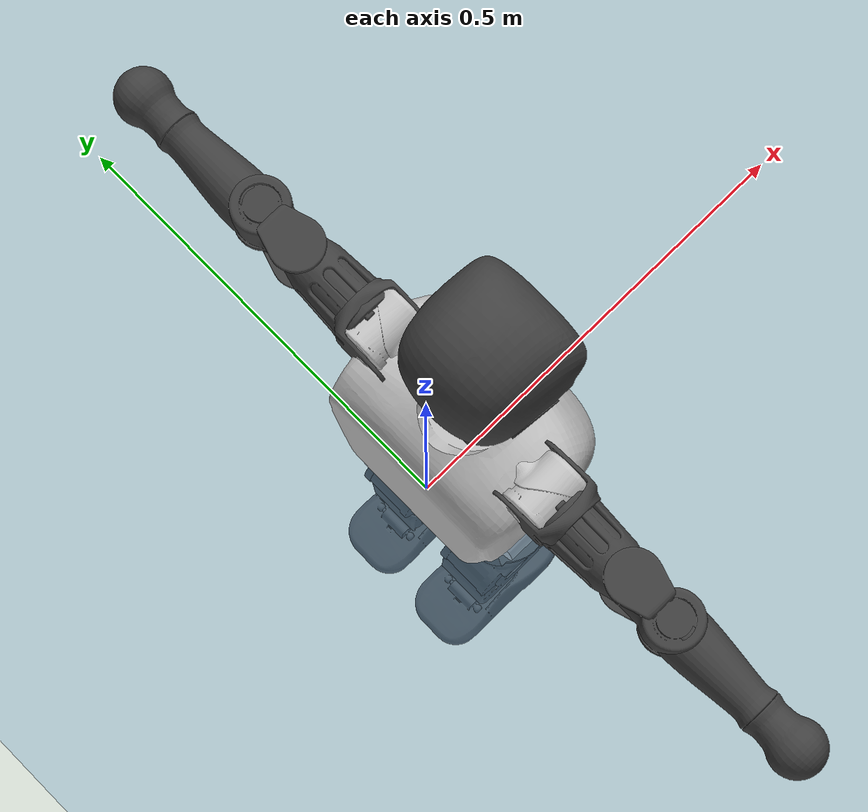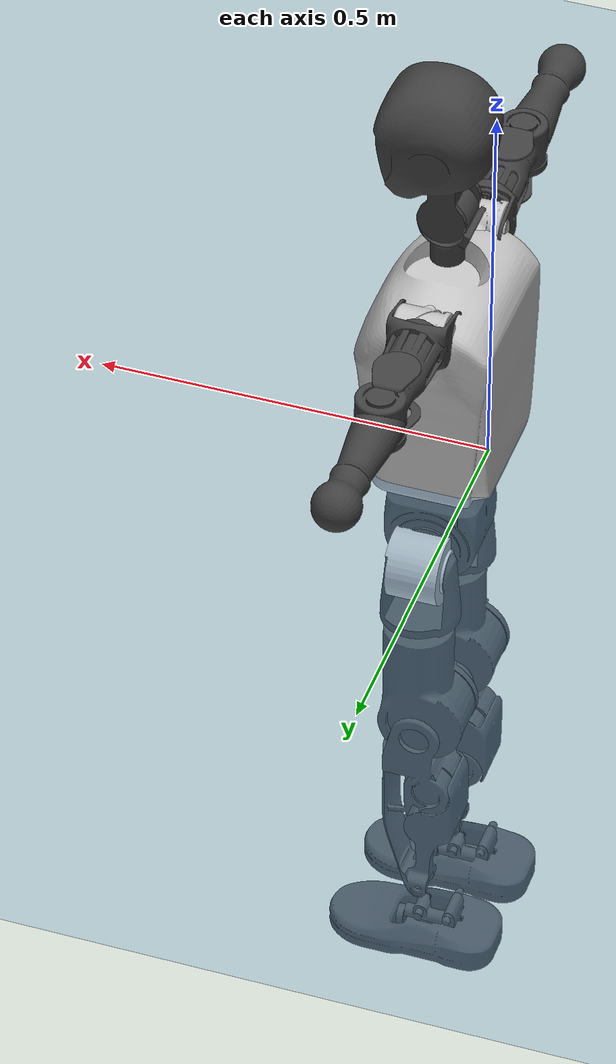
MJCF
<mujoco model="T1">
  <compiler angle="radian" assetdir="assets" balanceinertia="true" inertiafromgeom="false"/>

  <option timestep="0.005" density="1.2" viscosity="2e-05"/>

  <size nkey="1"/>

  <visual>
    <quality shadowsize="8192"/>
    <map shadowclip="0.5"/>
  </visual>

  <default>
    <default class="/">
      <joint armature="0.01" damping="0.01" frictionloss="0.1"/>
      <geom contype="0" conaffinity="0" group="1" solref="-1000 -80"/>
      <site size="0.01 0.005 0.005" group="5"/>
      <general forcelimited="true" biastype="affine" gainprm="25" biasprm="0 -25 -0.6"/>
      <default class="t1">
        <geom rgba="0.25 0.25 0.25 1"/>
        <default class="visual">
          <geom type="mesh" group="2"/>
        </default>
        <default class="collision">
          <geom group="3"/>
        </default>
        <default class="foot">
          <geom size="0.1115 0.05 0.015" type="box" condim="6" group="4" priority="1" solimp="0.015 1 0.015"/>
        </default>
        <default class="reward_collision_sphere">
          <geom group="5" rgba="1 0 0 1"/>
        </default>
      </default>
    </default>
  </default>

  <asset>
    <texture type="skybox" colorspace="auto" name="//unnamed_texture_0" builtin="gradient" rgb1="0.95 0.95 0.95" rgb2="0.95 0.95 0.95" width="100" height="600"/>
    <texture type="2d" colorspace="auto" name="texplane" builtin="checker" rgb1="0.345 0.575 0.748" rgb2="0.345 0.575 0.748" markrgb="1 1 1" width="512" height="512"/>
    <material name="MatPlane" class="/" texture="texplane" texuniform="true" texrepeat="2 2" specular="0.9"/>
    <mesh name="Trunk" class="/" file="Trunk.stl"/>
    <mesh name="H1" class="/" file="H1.stl"/>
    <mesh name="H2" class="/" file="H2.stl"/>
    <mesh name="AL1" class="/" file="AL1.stl"/>
    <mesh name="AL2" class="/" file="AL2.stl"/>
    <mesh name="AL3" class="/" file="AL3.stl"/>
    <mesh name="left_hand_link" class="/" file="left_hand_link.stl"/>
    <mesh name="AR1" class="/" file="AR1.stl"/>
    <mesh name="AR2" class="/" file="AR2.stl"/>
    <mesh name="AR3" class="/" file="AR3.stl"/>
    <mesh name="right_hand_link" class="/" file="right_hand_link.stl"/>
    <mesh name="Waist" class="/" file="Waist.stl"/>
    <mesh name="Hip_Pitch_Left" class="/" file="Hip_Pitch_Left.stl"/>
    <mesh name="Hip_Roll_Left" class="/" file="Hip_Roll_Left.stl"/>
    <mesh name="Hip_Yaw_Left" class="/" file="Hip_Yaw_Left.stl"/>
    <mesh name="Shank_Left" class="/" file="Shank_Left.stl"/>
    <mesh name="Ankle_Cross_Left" class="/" file="Ankle_Cross_Left.stl"/>
    <mesh name="left_foot_link" class="/" file="left_foot_link.stl"/>
    <mesh name="Hip_Pitch_Right" class="/" file="Hip_Pitch_Right.stl"/>
    <mesh name="Hip_Roll_Right" class="/" file="Hip_Roll_Right.stl"/>
    <mesh name="Hip_Yaw_Right" class="/" file="Hip_Yaw_Right.stl"/>
    <mesh name="Shank_Right" class="/" file="Shank_Right.stl"/>
    <mesh name="Ankle_Cross_Right" class="/" file="Ankle_Cross_Right.stl"/>
    <mesh name="right_foot_link" class="/" file="right_foot_link.stl"/>
  </asset>

  <worldbody>
    <geom name="floor" class="/" size="100 100 0.125" type="plane" group="0" material="MatPlane"/>
    <light name="toplight_shadow" class="/" pos="0 0 5" dir="0.0990148 0.0990148 -0.990148" type="directional" ambient="0.04 0.04 0.04" diffuse="0.55 0.55 0.55" specular="0.12 0.12 0.12"/>
    <light name="toplight_fill" class="/" pos="0 0 5" dir="0.0990148 0.0990148 -0.990148" type="directional" castshadow="false" ambient="0.04 0.04 0.04" diffuse="0.3 0.3 0.3" specular="0.08 0.08 0.08"/>
    <body name="trunk" childclass="t1" pos="0.000226899 0.00114138 0.00187734" quat="1 -0.000137937 6.72949e-05 0.000143426">
      <inertial pos="0.0502009 -0.00309336 0.12225" quat="0.999943 -0.00753111 -0.00146075 -0.00746666" mass="8.45602" diaginertia="0.0613713 0.00679797 0.115307"/>
      <joint name="//unnamed_joint_0" type="free" armature="0" damping="0" frictionloss="0"/>
      <geom name="//unnamed_geom_1" class="visual" rgba="0.76 0.76 0.76 1" mesh="Trunk"/>
      <geom name="//unnamed_geom_2" class="collision" size="0.0678913 0.0905218 0.135783" pos="0.0554309 0 0.140086" type="box"/>
      <geom name="//unnamed_geom_3" class="reward_collision_sphere" size="0.1041" pos="0.0554309 0 0.116738"/>
      <geom name="//unnamed_geom_4" class="reward_collision_sphere" size="0.0135783" pos="0.0554309 0.0530761 0"/>
      <geom name="//unnamed_geom_5" class="reward_collision_sphere" size="0.0135783" pos="0.0554309 -0.0530761 0"/>
      <geom name="//unnamed_geom_6" class="reward_collision_sphere" size="0.0135783" pos="0.0554309 0.0668134 0.210129"/>
      <geom name="//unnamed_geom_7" class="reward_collision_sphere" size="0.0135783" pos="0.0554309 -0.0668134 0.210129"/>
      <site name="imu" pos="0.000531413 0.00488136 -0.0135812" size="0.00905218"/>
      <camera name="track" pos="0 -1.24885 0" quat="0.707107 0.707107 0 0" mode="trackcom"/>
      <camera name="ego_camera" pos="0.112709 0 0.4903" quat="-0.5 -0.5 0.5 0.5"/>
      <body name="H1" pos="0.0570479 -0.0031612 0.281279" quat="1 0.000292648 0.000138405 -0.000462845">
        <inertial pos="0.000215979 -0.0021675 0.069691" quat="0.756115 -0.0140067 0.000711069 0.654289" mass="0.318269" diaginertia="0.000152917 2.13916e-05 0.000307905"/>
        <joint name="AAHead_yaw" pos="0 0 0" axis="0.00875964 -0.0097623 0.999914" stiffness="0.00330299" range="-1.51539 1.56481" armature="0.00942509" damping="0" frictionloss="0.0791063"/>
        <geom name="//unnamed_geom_8" class="visual" mesh="H1"/>
        <body name="H2" pos="-0.000245454 -0.00111148 0.0735628" quat="1 -0.00016262 -6.15643e-07 0.000497249">
          <inertial pos="0.00385837 0.00272432 0.116984" quat="0.990181 0.100053 -0.0693333 -0.0687244" mass="0.468748" diaginertia="0.00136536 0.00017772 0.00381872"/>
          <joint name="Head_pitch" pos="0 0 0" axis="-0.00929315 -0.999954 -0.00230738" range="-1.19062 0.332608" armature="0.00848893" damping="0.0137307" frictionloss="0.0861263"/>
          <geom name="//unnamed_geom_9" class="visual" mesh="H2"/>
          <geom name="//unnamed_geom_10" class="collision" size="0.0724174" pos="0.00923848 0 0.128412"/>
          <geom name="//unnamed_geom_11" class="reward_collision_sphere" size="0.0814696" pos="0.018477 0 0.116738"/>
        </body>
      </body>
      <body name="AL1" pos="0.0516927 0.0642594 0.253558" quat="1 0.000236743 0.000132717 -0.000369054">
        <inertial pos="0.00153315 0.025314 0.000218275" quat="0.505765 0.497155 -0.502565 0.494435" mass="0.380147" diaginertia="0.000865352 0.000119452 0.000625588"/>
        <joint name="Left_Shoulder_Pitch" pos="0 0 0" axis="0.0112371 0.999896 0.00900594" range="-3.30532 1.22185" armature="0.00790858" damping="0" frictionloss="0.0778416"/>
        <geom name="//unnamed_geom_12" class="visual" rgba="0.76 0.76 0.76 1" mesh="AL1"/>
        <body name="AL2" pos="-0.0013592 0.027403 0.00103761" quat="1 8.09469e-05 0.000139444 0.00021581">
          <inertial pos="0.00295453 0.0264255 -0.000378502" quat="0.485961 0.518057 -0.494043 0.501378" mass="0.119017" diaginertia="0.00027017 3.26674e-05 0.0003838"/>
          <joint name="Left_Shoulder_Roll" pos="0 0 0" axis="-0.999985 0.00457324 0.0030932" range="-1.5715 1.71108" armature="0.0101089" damping="0.0167147" frictionloss="0.0898463"/>
          <geom name="//unnamed_geom_13" class="visual" mesh="AL2"/>
          <body name="AL3" pos="-0.00207523 0.0350058 -0.00100547" quat="1 -0.000319369 -0.000253387 0.000158306">
            <inertial pos="7.58903e-05 0.0543875 0.00245013" quat="0.708483 0.705721 0.0031326 0.000434374" mass="0.748938" diaginertia="0.00834332 0.00118572 0.00131961"/>
            <joint name="Left_Elbow_Pitch" pos="0 0 0" axis="-0.00962626 -0.999935 -0.00614693" stiffness="0.0124172" range="-2.25487 2.26086" armature="0.00964446" damping="0.0107666" frictionloss="0.08855"/>
            <geom name="//unnamed_geom_14" class="visual" mesh="AL3"/>
            <geom name="//unnamed_geom_15" class="collision" size="0.0271565 0.0678913" pos="0 0.0312212 0" quat="0.707105 0.707108 0 0" type="cylinder"/>
            <geom name="//unnamed_geom_16" class="reward_collision_sphere" size="0.0325878"/>
            <body name="left_hand_link" pos="-0.00231546 0.0945242 -0.000247227" quat="1 -9.48344e-05 2.60915e-05 -8.19115e-05">
              <inertial pos="-0.000994723 0.0704994 -0.000504911" quat="0.712781 0.701367 0.00156211 -0.00504979" mass="0.23508" diaginertia="0.00551144 0.000791577 0.000461249"/>
              <joint name="Left_Elbow_Yaw" pos="0 0 0" axis="-0.00393126 -0.00539312 0.999978" stiffness="0.012531" range="-2.49662 -0.00711521" armature="0.00842278" damping="0.00547878" frictionloss="0.10303"/>
              <geom name="//unnamed_geom_17" class="visual" mesh="left_hand_link"/>
              <geom name="//unnamed_geom_18" class="collision" size="0.0271565 0.0792066" pos="0 0.0811752 0" quat="0.707105 0.707108 0 0" type="cylinder"/>
              <geom name="//unnamed_geom_19" class="reward_collision_sphere" size="0.0452609"/>
              <geom name="//unnamed_geom_20" class="reward_collision_sphere" size="0.0316826" pos="0 0.0686867 0"/>
              <geom name="//unnamed_geom_21" class="reward_collision_sphere" size="0.0316826" pos="0 0.134251 0"/>
            </body>
          </body>
        </body>
      </body>
      <body name="AR1" pos="0.0509465 -0.0644654 0.254833" quat="1 -0.00010476 0.000449873 0.00010725">
        <inertial pos="-0.000718507 -0.0292771 -0.00128074" quat="0.497597 0.501996 -0.500482 0.499915" mass="0.407121" diaginertia="0.000932713 0.000118679 0.000643467"/>
        <joint name="Right_Shoulder_Pitch" pos="0 0 0" axis="0.00299455 -0.999995 0.00107319" range="-1.22268 3.31603" armature="0.00851466" damping="0.020215" frictionloss="0.0904706"/>
        <geom name="//unnamed_geom_22" class="visual" rgba="0.76 0.76 0.76 1" mesh="AR1"/>
        <body name="AR2" pos="-0.000865268 -0.0300607 0.00155534" quat="1 3.43547e-06 -6.03229e-07 3.61566e-06">
          <inertial pos="0.00551793 -0.0235353 0.000724797" quat="0.521243 0.485424 -0.504422 0.488085" mass="0.119501" diaginertia="0.000271329 3.17752e-05 0.000388257"/>
          <joint name="Right_Shoulder_Roll" pos="0 0 0" axis="-0.999983 0.00578658 0.000854394" range="-1.7513 1.61135" armature="0.00865054" damping="0" frictionloss="0.0973364"/>
          <geom name="//unnamed_geom_23" class="visual" mesh="AR2"/>
          <body name="AR3" pos="-0.00117347 -0.0366128 -0.00318379" quat="0.999999 0.00125323 -0.000447227 9.5485e-05">
            <inertial pos="-0.000360124 -0.0515871 -0.00122344" quat="0.712385 0.701683 0.00198302 0.012076" mass="0.759624" diaginertia="0.00851578 0.0011865 0.00132199"/>
            <joint name="Right_Elbow_Pitch" pos="0 0 0" axis="0.00259081 0.999996 0.000936238" stiffness="0.00994995" range="-2.30642 2.24519" armature="0.00925601" damping="0" frictionloss="0.0892371"/>
            <geom name="//unnamed_geom_24" class="visual" mesh="AR3"/>
            <geom name="//unnamed_geom_25" class="collision" size="0.0271565 0.0678913" pos="0 -0.0312212 0" quat="0.707105 0.707108 0 0" type="cylinder"/>
            <geom name="//unnamed_geom_26" class="reward_collision_sphere" size="0.0325878"/>
            <body name="right_hand_link" pos="0.000549525 -0.0933038 -0.000949201" quat="1 0.000190892 6.74068e-05 -0.00013734">
              <inertial pos="-0.00126116 -0.0691554 0.00107732" quat="0.706889 0.707219 -0.00632617 0.0104428" mass="0.236563" diaginertia="0.0053395 0.000742089 0.000446695"/>
              <joint name="Right_Elbow_Yaw" pos="0 0 0" axis="0.00378192 0.0111814 0.99993" range="0.0522931 2.45958" armature="0.00872979" damping="0.00380297" frictionloss="0.0920752"/>
              <geom name="//unnamed_geom_27" class="visual" mesh="right_hand_link"/>
              <geom name="//unnamed_geom_28" class="collision" size="0.0271565 0.0792066" pos="0 -0.0811752 0" quat="0.707105 0.707108 0 0" type="cylinder"/>
              <geom name="//unnamed_geom_29" class="reward_collision_sphere" size="0.0452609"/>
              <geom name="//unnamed_geom_30" class="reward_collision_sphere" size="0.0316826" pos="0 -0.0686867 0"/>
              <geom name="//unnamed_geom_31" class="reward_collision_sphere" size="0.0316826" pos="0 -0.134251 0"/>
            </body>
          </body>
        </body>
      </body>
      <body name="Waist" pos="0.0594138 -0.000581857 -0.133019" quat="0.999999 -0.000708303 1.52075e-05 -0.000936376">
        <inertial pos="0.00218432 -0.0023725 0.00944372" quat="0.98355 -0.000315215 -0.180619 0.00226329" mass="1.98679" diaginertia="0.00365395 0.000510672 0.0100822"/>
        <joint name="Waist" pos="0 0 0" axis="0.0105457 0.00838902 0.999909" stiffness="0.00403758" range="-1.54977 1.58319" armature="0.010158" damping="0" frictionloss="0.0898563"/>
        <geom name="//unnamed_geom_32" class="visual" mesh="Waist"/>
        <body name="Hip_Pitch_Left" pos="0.00423288 0.0661204 0.001237" quat="1 -0.000136101 -0.000562189 -0.000678678">
          <inertial pos="-4.74268e-05 -0.00727592 -0.0219097" quat="0.972733 0.230884 0.0214211 -0.00499336" mass="0.756283" diaginertia="0.00115125 0.000133006 0.00253057"/>
          <joint name="Left_Hip_Pitch" pos="0 0 0" axis="0.0148519 0.99989 -0.000483346" stiffness="0.00386105" range="-1.81354 1.61767" armature="0.00803751" damping="0.00921066" frictionloss="0.102691"/>
          <geom name="//unnamed_geom_33" class="visual" rgba="0.76 0.76 0.76 1" mesh="Hip_Pitch_Left"/>
          <body name="Hip_Roll_Left" pos="0.000593877 0.000856635 -0.0210947" quat="1 8.24392e-05 0.000498403 -0.000127693">
            <inertial pos="0.000525349 -0.00176937 -0.0607732" quat="0.709015 -0.00769663 -0.00694923 0.705117" mass="0.286906" diaginertia="0.0011714 0.000147388 0.00109855"/>
            <joint name="Left_Hip_Roll" pos="0 0 0" axis="-0.999987 0.00267715 -0.00443992" range="-1.60836 0.210902" armature="0.00933701" damping="0.0171862" frictionloss="0.092787"/>
            <geom name="//unnamed_geom_34" class="visual" mesh="Hip_Roll_Left"/>
            <geom name="//unnamed_geom_35" class="reward_collision_sphere" size="0.049787"/>
            <body name="Hip_Yaw_Left" pos="-0.00147658 0.00129943 -0.0948912" quat="1 0.000101364 6.4037e-05 0.00013802">
              <inertial pos="-0.00517026 -0.00170229 -0.107003" quat="0.697344 -0.033294 -0.035608 0.715077" mass="1.58686" diaginertia="0.016452 0.00235686 0.005621"/>
              <joint name="Left_Hip_Yaw" pos="0 0 0" axis="-0.00170454 -0.0125554 -0.99992" range="-0.97305 1.00466" armature="0.00921001" damping="0" frictionloss="0.103131"/>
              <geom name="//unnamed_geom_36" class="visual" mesh="Hip_Yaw_Left"/>
              <geom name="//unnamed_geom_37" class="collision" size="0.0452609 0.0724174" type="cylinder"/>
              <body name="Shank_Left" pos="-0.00887626 -9.87807e-05 -0.156702" quat="1 -6.541e-05 -7.9279e-05 0.00027692">
                <inertial pos="-0.00416345 -0.00096958 -0.14555" quat="0.997195 -0.00125232 -0.0226675 0.0713152" mass="1.2645" diaginertia="0.0231372 0.00324834 0.00418191"/>
                <joint name="Left_Knee_Pitch" pos="0 0 0" axis="-0.000546704 0.999999 -0.000842045" stiffness="0.00990782" range="0.0525188 2.39633" armature="0.00851935" damping="0.0179051" frictionloss="0.0904653"/>
                <geom name="//unnamed_geom_38" class="visual" mesh="Shank_Left"/>
                <geom name="//unnamed_geom_39" class="collision" size="0.0452609 0.0678913" pos="0 0 -0.140086" type="cylinder"/>
                <geom name="//unnamed_geom_40" class="reward_collision_sphere" size="0.0588392"/>
                <body name="Ankle_Cross_Left" pos="-0.00108115 0.00036299 -0.327246" quat="0.999999 -0.00105228 -0.000785751 0.000680348">
                  <inertial pos="-0.00127197 0.00213715 -0.0121054" quat="0.443906 0.554159 0.549099 0.440846" mass="0.0528873" diaginertia="1.95636e-05 2.27796e-06 2.37644e-05"/>
                  <joint name="Left_Ankle_Pitch" pos="0 0 0" axis="-0.0153793 0.999862 -0.00623868" stiffness="0.00924341" range="-0.918103 0.398527" armature="0.00877672" damping="0.0223481" frictionloss="0.0807964"/>
                  <geom name="//unnamed_geom_41" class="visual" mesh="Ankle_Cross_Left"/>
                  <body name="left_foot_link" pos="-0.00115105 0.00389747 -0.0166056" quat="1 -0.000411885 -2.61519e-05 -0.000394626">
                    <inertial pos="0.00226636 0.00161219 -0.00978144" quat="0.0112674 0.622545 0.00470414 0.782489" mass="0.51915" diaginertia="0.0018382 0.000240452 0.00504013"/>
                    <joint name="Left_Ankle_Roll" pos="0 0 0" axis="-0.999901 0.00115461 -0.0139963" stiffness="0.00900056" range="-0.492014 0.443199" armature="0.00877265" damping="0.0102953" frictionloss="0.102001"/>
                    <geom name="//unnamed_geom_42" class="visual" mesh="left_foot_link"/>
                    <geom name="left_foot" class="foot" size="0.099495 0.0520742 0.0127529" pos="0.00923848 0 -0.0175107"/>
                    <geom name="//unnamed_geom_44" class="reward_collision_sphere" size="0.0470713" pos="0.00923848 0 -0.0175107"/>
                    <geom name="//unnamed_geom_45" class="reward_collision_sphere" size="0.0271565" pos="0.0877655 -0.0143618 -0.0175107"/>
                    <geom name="//unnamed_geom_46" class="reward_collision_sphere" size="0.0271565" pos="-0.0646693 -0.0143618 -0.0175107"/>
                    <site name="left_foot" class="foot" pos="0.00923848 0 -0.0175107" size="0.00905218"/>
                  </body>
                </body>
              </body>
            </body>
          </body>
        </body>
        <body name="Hip_Pitch_Right" pos="0.00131894 -0.0633956 -0.00134404" quat="1 0.000339945 -0.000128625 0.000144731">
          <inertial pos="-0.000410942 0.005563 -0.0210519" quat="0.973669 -0.226365 0.0222209 -0.0153134" mass="0.705825" diaginertia="0.00118027 0.000133383 0.00260741"/>
          <joint name="Right_Hip_Pitch" pos="0 0 0" axis="0.00716899 -0.999892 -0.0128576" range="-1.53892 1.74393" armature="0.00838452" damping="0.0136995" frictionloss="0.0778997"/>
          <geom name="//unnamed_geom_47" class="visual" rgba="0.76 0.76 0.76 1" mesh="Hip_Pitch_Right"/>
          <body name="Hip_Roll_Right" pos="0.000247307 -0.00214684 -0.025487" quat="1 0.000299336 8.9338e-05 -0.000100042">
            <inertial pos="0.00074701 -0.000294691 -0.0646764" quat="0.704566 -0.0059234 -0.00619793 0.709586" mass="0.293588" diaginertia="0.00119552 0.000144423 0.0011289"/>
            <joint name="Right_Hip_Roll" pos="0 0 0" axis="-0.99992 -0.00160892 -0.0125278" range="-0.192271 1.56484" armature="0.00925895" damping="0.018272" frictionloss="0.0823621"/>
            <geom name="//unnamed_geom_48" class="visual" mesh="Hip_Roll_Right"/>
            <geom name="//unnamed_geom_49" class="reward_collision_sphere" size="0.049787"/>
            <body name="Hip_Yaw_Right" pos="0.00191111 0.00307752 -0.0946022" quat="1 -0.000309858 -0.000524797 0.000722894">
              <inertial pos="-0.00597693 0.000711542 -0.101432" quat="0.7181 -0.0346652 -0.0220491 0.694726" mass="1.68818" diaginertia="0.0175897 0.00243442 0.00556022"/>
              <joint name="Right_Hip_Yaw" pos="0 0 0" axis="-0.0133381 -0.00762308 -0.999882" stiffness="0.00221728" range="-1.05894 1.03264" armature="0.00843731" damping="0.0217968" frictionloss="0.0908973"/>
              <geom name="//unnamed_geom_50" class="visual" mesh="Hip_Yaw_Right"/>
              <geom name="//unnamed_geom_51" class="collision" size="0.0452609 0.0724174" type="cylinder"/>
              <body name="Shank_Right" pos="-0.0130976 0.00307926 -0.156748" quat="1 -0.000483903 8.03406e-05 -0.000185247">
                <inertial pos="-0.00493704 -0.0010796 -0.146123" quat="0.999217 0.00581685 -0.0220002 -0.032369" mass="1.31759" diaginertia="0.0236132 0.00314653 0.00417332"/>
                <joint name="Right_Knee_Pitch" pos="0 0 0" axis="0.00450059 -0.999972 -0.00601446" range="-2.28506 0.0506191" armature="0.00896002" damping="0.0182365" frictionloss="0.086131"/>
                <geom name="//unnamed_geom_52" class="visual" mesh="Shank_Right"/>
                <geom name="//unnamed_geom_53" class="collision" size="0.0452609 0.0678913" pos="0 0 -0.140086" type="cylinder"/>
                <geom name="//unnamed_geom_54" class="reward_collision_sphere" size="0.0588392"/>
                <body name="Ankle_Cross_Right" pos="-0.00237531 0.00111491 -0.325077" quat="1 0.00024955 -0.000651954 -0.000322574">
                  <inertial pos="-0.00528834 -0.000760333 -0.00950862" quat="0.443267 0.550842 0.550995 0.443274" mass="0.0541462" diaginertia="1.95153e-05 2.46141e-06 2.43693e-05"/>
                  <joint name="Right_Ankle_Pitch" pos="0 0 0" axis="-0.00488118 -0.999983 -0.00326046" range="-0.304964 0.920599" armature="0.00916222" damping="0" frictionloss="0.0832212"/>
                  <geom name="//unnamed_geom_55" class="visual" mesh="Ankle_Cross_Right"/>
                  <body name="right_foot_link" pos="0.000754587 -0.000947751 -0.0119078" quat="0.999999 -0.00115187 -0.000627776 -7.56151e-05">
                    <inertial pos="0.000934867 -0.00230587 -0.0101749" quat="-0.00799925 0.615421 0.00295494 0.788153" mass="0.511052" diaginertia="0.00176686 0.00022162 0.00450238"/>
                    <joint name="Right_Ankle_Roll" pos="0 0 0" axis="-0.999998 -0.00129438 -0.00116746" stiffness="0.0080051" range="-0.466281 0.427575" armature="0.0103182" damping="0.00443451" frictionloss="0.0860552"/>
                    <geom name="//unnamed_geom_56" class="visual" mesh="right_foot_link"/>
                    <geom name="right_foot" class="foot" size="0.101033 0.0466222 0.0141603" pos="0.00923848 0 -0.0175107"/>
                    <geom name="//unnamed_geom_58" class="reward_collision_sphere" size="0.0362087"/>
                    <geom name="//unnamed_geom_59" class="reward_collision_sphere" size="0.0271565" pos="0.00923848 0 -0.0175107"/>
                    <geom name="//unnamed_geom_60" class="reward_collision_sphere" size="0.0271565" pos="0.0877655 0.0143618 -0.0175107"/>
                    <geom name="//unnamed_geom_61" class="reward_collision_sphere" size="0.0271565" pos="-0.0646693 0.0143618 -0.0175107"/>
                    <site name="right_foot" class="foot" pos="0.00923848 0 -0.0175107" size="0.00905218"/>
                  </body>
                </body>
              </body>
            </body>
          </body>
        </body>
      </body>
    </body>
  </worldbody>

  <contact>
    <pair class="/" geom1="floor" geom2="left_foot" name="//unnamed_contact_0"/>
    <pair class="/" geom1="floor" geom2="right_foot" name="//unnamed_contact_1"/>
  </contact>

  <actuator>
    <general name="AAHead_yaw" class="/" joint="AAHead_yaw" forcerange="-6.88123 6.88123" gainprm="23.1908" biasprm="0 -23.1908 -0.49715"/>
    <general name="Head_pitch" class="/" joint="Head_pitch" forcerange="-6.82807 6.82807" gainprm="23.1908" biasprm="0 -23.1908 -0.49715"/>
    <general name="Left_Shoulder_Pitch" class="/" joint="Left_Shoulder_Pitch" forcerange="-14.5342 14.5342" gainprm="23.1908" biasprm="0 -23.1908 -0.49715"/>
    <general name="Left_Shoulder_Roll" class="/" joint="Left_Shoulder_Roll" forcerange="-16.2391 16.2391" gainprm="23.1908" biasprm="0 -23.1908 -0.49715"/>
    <general name="Left_Elbow_Pitch" class="/" joint="Left_Elbow_Pitch" forcerange="-16.5879 16.5879" gainprm="23.1908" biasprm="0 -23.1908 -0.49715"/>
    <general name="Left_Elbow_Yaw" class="/" joint="Left_Elbow_Yaw" forcerange="-14.8606 14.8606" gainprm="23.1908" biasprm="0 -23.1908 -0.49715"/>
    <general name="Right_Shoulder_Pitch" class="/" joint="Right_Shoulder_Pitch" forcerange="-16.4836 16.4836" gainprm="23.1908" biasprm="0 -23.1908 -0.49715"/>
    <general name="Right_Shoulder_Roll" class="/" joint="Right_Shoulder_Roll" forcerange="-16.9784 16.9784" gainprm="23.1908" biasprm="0 -23.1908 -0.49715"/>
    <general name="Right_Elbow_Pitch" class="/" joint="Right_Elbow_Pitch" forcerange="-16.4467 16.4467" gainprm="23.1908" biasprm="0 -23.1908 -0.49715"/>
    <general name="Right_Elbow_Yaw" class="/" joint="Right_Elbow_Yaw" forcerange="-17.9498 17.9498" gainprm="23.1908" biasprm="0 -23.1908 -0.49715"/>
    <general name="Waist" class="/" joint="Waist" forcerange="-25.981 25.981" gainprm="23.1908" biasprm="0 -23.1908 -0.49715"/>
    <general name="Left_Hip_Pitch" class="/" joint="Left_Hip_Pitch" forcerange="-36.8853 36.8853" gainprm="23.1908" biasprm="0 -23.1908 -0.49715"/>
    <general name="Left_Hip_Roll" class="/" joint="Left_Hip_Roll" forcerange="-27.9494 27.9494" gainprm="23.1908" biasprm="0 -23.1908 -0.49715"/>
    <general name="Left_Hip_Yaw" class="/" joint="Left_Hip_Yaw" forcerange="-27.9319 27.9319" gainprm="23.1908" biasprm="0 -23.1908 -0.49715"/>
    <general name="Left_Knee_Pitch" class="/" joint="Left_Knee_Pitch" forcerange="-57.8405 57.8405" gainprm="23.1908" biasprm="0 -23.1908 -0.49715"/>
    <general name="Left_Ankle_Pitch" class="/" joint="Left_Ankle_Pitch" forcerange="-19.1453 19.1453" gainprm="23.1908" biasprm="0 -23.1908 -0.49715"/>
    <general name="Left_Ankle_Roll" class="/" joint="Left_Ankle_Roll" forcerange="-13.9627 13.9627" gainprm="23.1908" biasprm="0 -23.1908 -0.49715"/>
    <general name="Right_Hip_Pitch" class="/" joint="Right_Hip_Pitch" forcerange="-41.5284 41.5284" gainprm="23.1908" biasprm="0 -23.1908 -0.49715"/>
    <general name="Right_Hip_Roll" class="/" joint="Right_Hip_Roll" forcerange="-24.3926 24.3926" gainprm="23.1908" biasprm="0 -23.1908 -0.49715"/>
    <general name="Right_Hip_Yaw" class="/" joint="Right_Hip_Yaw" forcerange="-24.4458 24.4458" gainprm="23.1908" biasprm="0 -23.1908 -0.49715"/>
    <general name="Right_Knee_Pitch" class="/" joint="Right_Knee_Pitch" forcerange="-56.7724 56.7724" gainprm="23.1908" biasprm="0 -23.1908 -0.49715"/>
    <general name="Right_Ankle_Pitch" class="/" joint="Right_Ankle_Pitch" forcerange="-19.897 19.897" gainprm="23.1908" biasprm="0 -23.1908 -0.49715"/>
    <general name="Right_Ankle_Roll" class="/" joint="Right_Ankle_Roll" forcerange="-13.4838 13.4838" gainprm="23.1908" biasprm="0 -23.1908 -0.49715"/>
  </actuator>

  <sensor>
    <gyro site="imu" name="imu_angular_velocity"/>
    <velocimeter site="imu" name="imu_linear_velocity"/>
    <framelinvel objtype="site" objname="left_foot" name="left_foot_global_linear_velocity"/>
    <framelinvel objtype="site" objname="right_foot" name="right_foot_global_linear_velocity"/>
  </sensor>

  <keyframe>
    <key name="home" qpos="0 0 0.6385 1 0 0 0 0 0 0 1.4 0 -0.4 0 -1.4 0 0.4 0 -0.4 0 0 0.8 -0.4 0 0.4 0 0 -0.8 0.4 0"/>
  </keyframe>
</mujoco>
